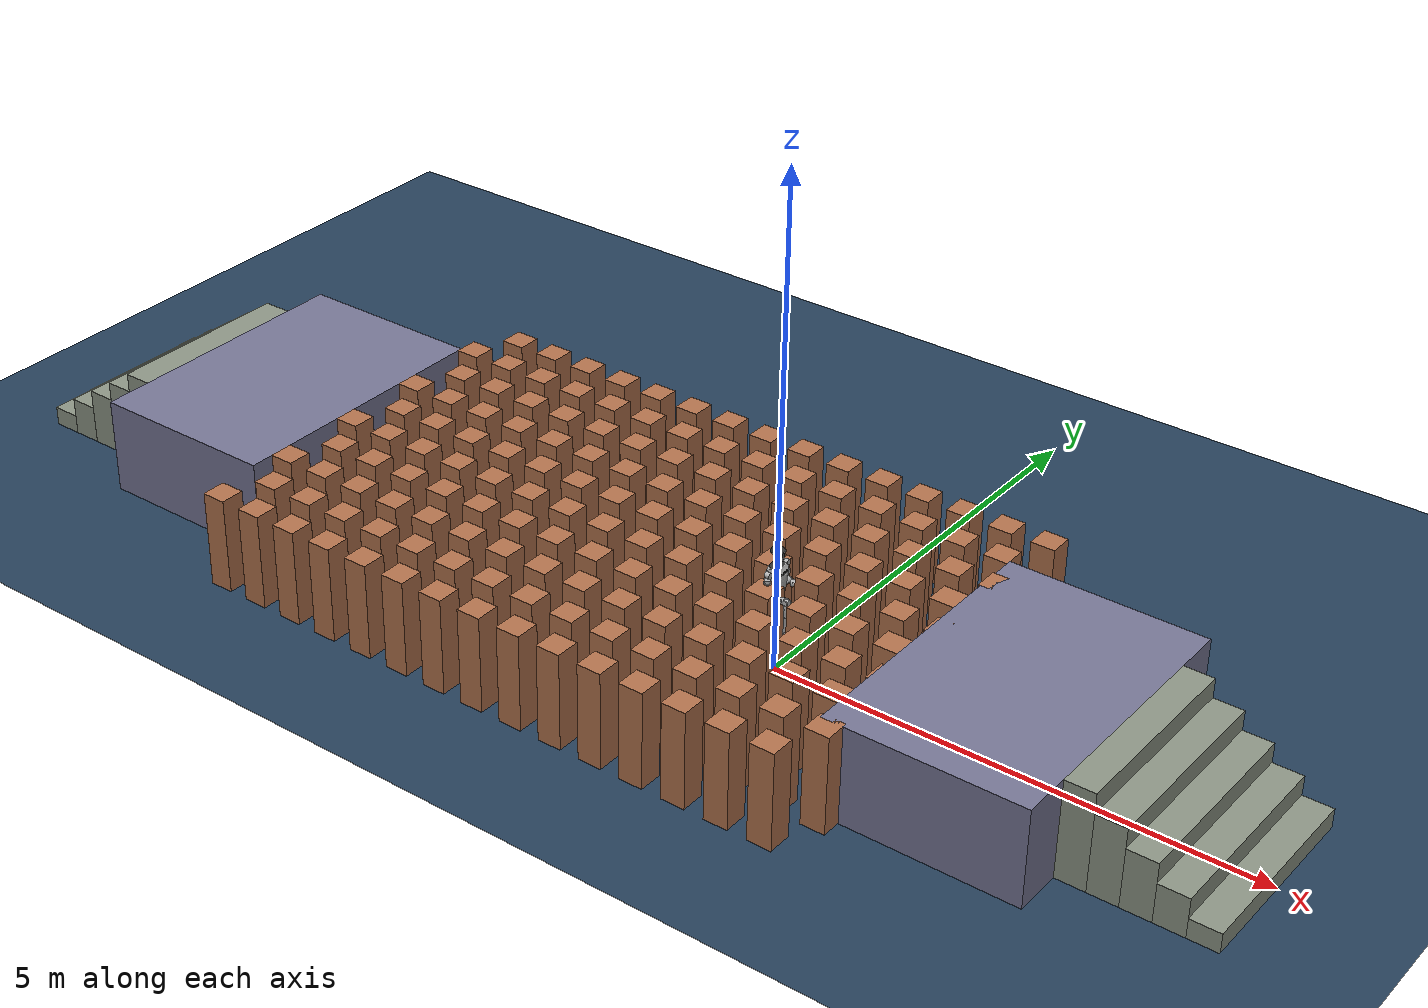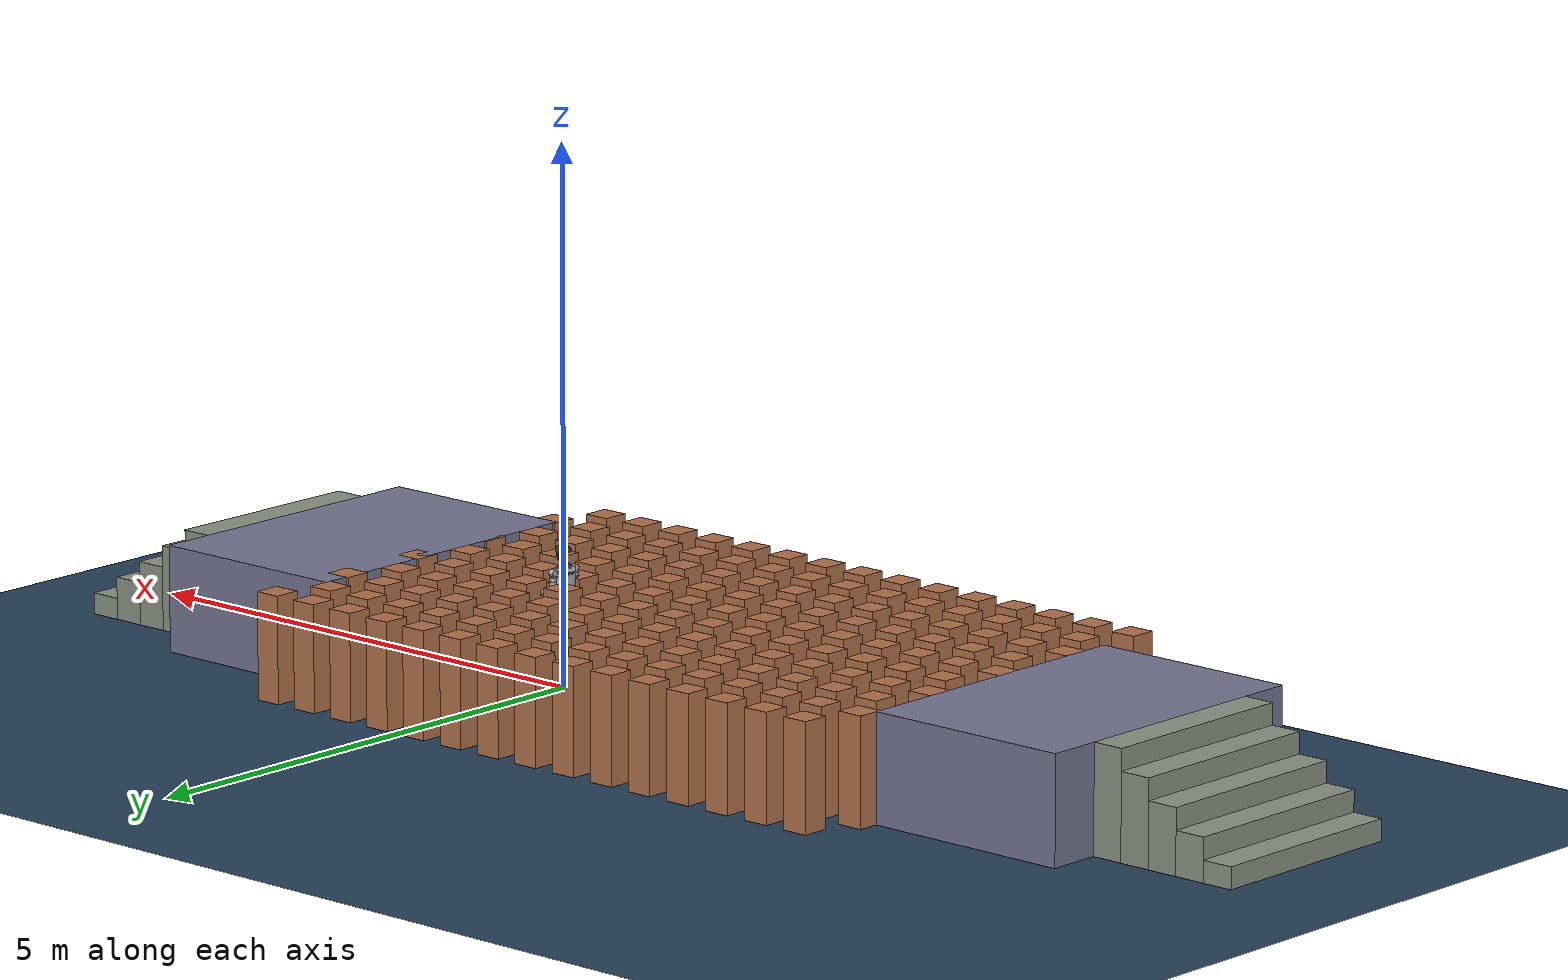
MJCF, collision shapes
<mujoco model="g1_29dof rough terrain scene">
  <include file="g1_29dof_raycaster.xml" />
  <extension>
    <plugin plugin="mujoco.sensor.ray_caster" />
  </extension>
  <statistic center="9.0 0.0 0.25" extent="20.0" />
  <visual>
    <headlight diffuse="0.6 0.6 0.6" ambient="0.3 0.3 0.3" specular="0 0 0" />
    <rgba haze="0.15 0.25 0.35 1" />
    <global azimuth="-130" elevation="-25" />
  </visual>
  <asset>
    <texture type="skybox" builtin="gradient" rgb1="0.3 0.5 0.7" rgb2="0 0 0" width="512" height="3072" />
    <texture type="2d" name="groundplane" builtin="checker" mark="edge" rgb1="0.2 0.3 0.4" rgb2="0.1 0.2 0.3" markrgb="0.8 0.8 0.8" width="300" height="300" />
    <material name="groundplane" texture="groundplane" texuniform="true" texrepeat="5 5" reflectance="0.2" />
    <material name="stair_mat" rgba="0.55 0.58 0.52 1" />
    <material name="platform_mat" rgba="0.46 0.46 0.58 1" />
    <material name="pile_mat" rgba="0.7 0.45 0.3 1" />
  </asset>
  <worldbody>
    <light pos="0 0 2.5" dir="0 0 -1" directional="true" />
    <geom name="floor" group="2" size="0 0 0.05" type="plane" material="groundplane" />
    <!-- Up stairs -->
    <geom name="up_stair_0" group="2" pos="4.85 0 0.1" type="box" size="0.15 1 0.1" material="stair_mat" />
    <geom name="up_stair_1" group="2" pos="4.55 0 0.2" type="box" size="0.15 1 0.2" material="stair_mat" />
    <geom name="up_stair_2" group="2" pos="4.25 0 0.3" type="box" size="0.15 1 0.3" material="stair_mat" />
    <geom name="up_stair_3" group="2" pos="3.95 0 0.4" type="box" size="0.15 1 0.4" material="stair_mat" />
    <geom name="up_stair_4" group="2" pos="3.65 0 0.5" type="box" size="0.15 1 0.5" material="stair_mat" />
    <!-- Platform 1: x=[1.5, 3.5]-->
    <geom name="platform_1" group="2" pos="2.5 0 0.5" type="box" size="1 1.5 0.5" material="platform_mat" />
    <!-- Plum-blossom piles: 10x15, center_x=-1.775, top z=1-->
    <geom name="pile_r0_c0" group="2" pos="-4.925 -2.025 0.5" type="box" size="0.125 0.125 0.5" material="pile_mat" />
    <geom name="pile_r0_c1" group="2" pos="-4.475 -2.025 0.5" type="box" size="0.125 0.125 0.5" material="pile_mat" />
    <geom name="pile_r0_c2" group="2" pos="-4.025 -2.025 0.5" type="box" size="0.125 0.125 0.5" material="pile_mat" />
    <geom name="pile_r0_c3" group="2" pos="-3.575 -2.025 0.5" type="box" size="0.125 0.125 0.5" material="pile_mat" />
    <geom name="pile_r0_c4" group="2" pos="-3.125 -2.025 0.5" type="box" size="0.125 0.125 0.5" material="pile_mat" />
    <geom name="pile_r0_c5" group="2" pos="-2.675 -2.025 0.5" type="box" size="0.125 0.125 0.5" material="pile_mat" />
    <geom name="pile_r0_c6" group="2" pos="-2.225 -2.025 0.5" type="box" size="0.125 0.125 0.5" material="pile_mat" />
    <geom name="pile_r0_c7" group="2" pos="-1.775 -2.025 0.5" type="box" size="0.125 0.125 0.5" material="pile_mat" />
    <geom name="pile_r0_c8" group="2" pos="-1.325 -2.025 0.5" type="box" size="0.125 0.125 0.5" material="pile_mat" />
    <geom name="pile_r0_c9" group="2" pos="-0.875 -2.025 0.5" type="box" size="0.125 0.125 0.5" material="pile_mat" />
    <geom name="pile_r0_c10" group="2" pos="-0.425 -2.025 0.5" type="box" size="0.125 0.125 0.5" material="pile_mat" />
    <geom name="pile_r0_c11" group="2" pos="0.025 -2.025 0.5" type="box" size="0.125 0.125 0.5" material="pile_mat" />
    <geom name="pile_r0_c12" group="2" pos="0.475 -2.025 0.5" type="box" size="0.125 0.125 0.5" material="pile_mat" />
    <geom name="pile_r0_c13" group="2" pos="0.925 -2.025 0.5" type="box" size="0.125 0.125 0.5" material="pile_mat" />
    <geom name="pile_r0_c14" group="2" pos="1.375 -2.025 0.5" type="box" size="0.125 0.125 0.5" material="pile_mat" />
    <geom name="pile_r1_c0" group="2" pos="-4.7 -1.575 0.5" type="box" size="0.125 0.125 0.5" material="pile_mat" />
    <geom name="pile_r1_c1" group="2" pos="-4.25 -1.575 0.5" type="box" size="0.125 0.125 0.5" material="pile_mat" />
    <geom name="pile_r1_c2" group="2" pos="-3.8 -1.575 0.5" type="box" size="0.125 0.125 0.5" material="pile_mat" />
    <geom name="pile_r1_c3" group="2" pos="-3.35 -1.575 0.5" type="box" size="0.125 0.125 0.5" material="pile_mat" />
    <geom name="pile_r1_c4" group="2" pos="-2.9 -1.575 0.5" type="box" size="0.125 0.125 0.5" material="pile_mat" />
    <geom name="pile_r1_c5" group="2" pos="-2.45 -1.575 0.5" type="box" size="0.125 0.125 0.5" material="pile_mat" />
    <geom name="pile_r1_c6" group="2" pos="-2 -1.575 0.5" type="box" size="0.125 0.125 0.5" material="pile_mat" />
    <geom name="pile_r1_c7" group="2" pos="-1.55 -1.575 0.5" type="box" size="0.125 0.125 0.5" material="pile_mat" />
    <geom name="pile_r1_c8" group="2" pos="-1.1 -1.575 0.5" type="box" size="0.125 0.125 0.5" material="pile_mat" />
    <geom name="pile_r1_c9" group="2" pos="-0.65 -1.575 0.5" type="box" size="0.125 0.125 0.5" material="pile_mat" />
    <geom name="pile_r1_c10" group="2" pos="-0.2 -1.575 0.5" type="box" size="0.125 0.125 0.5" material="pile_mat" />
    <geom name="pile_r1_c11" group="2" pos="0.25 -1.575 0.5" type="box" size="0.125 0.125 0.5" material="pile_mat" />
    <geom name="pile_r1_c12" group="2" pos="0.7 -1.575 0.5" type="box" size="0.125 0.125 0.5" material="pile_mat" />
    <geom name="pile_r1_c13" group="2" pos="1.15 -1.575 0.5" type="box" size="0.125 0.125 0.5" material="pile_mat" />
    <geom name="pile_r1_c14" group="2" pos="1.6 -1.575 0.5" type="box" size="0.125 0.125 0.5" material="pile_mat" />
    <geom name="pile_r2_c0" group="2" pos="-4.925 -1.125 0.5" type="box" size="0.125 0.125 0.5" material="pile_mat" />
    <geom name="pile_r2_c1" group="2" pos="-4.475 -1.125 0.5" type="box" size="0.125 0.125 0.5" material="pile_mat" />
    <geom name="pile_r2_c2" group="2" pos="-4.025 -1.125 0.5" type="box" size="0.125 0.125 0.5" material="pile_mat" />
    <geom name="pile_r2_c3" group="2" pos="-3.575 -1.125 0.5" type="box" size="0.125 0.125 0.5" material="pile_mat" />
    <geom name="pile_r2_c4" group="2" pos="-3.125 -1.125 0.5" type="box" size="0.125 0.125 0.5" material="pile_mat" />
    <geom name="pile_r2_c5" group="2" pos="-2.675 -1.125 0.5" type="box" size="0.125 0.125 0.5" material="pile_mat" />
    <geom name="pile_r2_c6" group="2" pos="-2.225 -1.125 0.5" type="box" size="0.125 0.125 0.5" material="pile_mat" />
    <geom name="pile_r2_c7" group="2" pos="-1.775 -1.125 0.5" type="box" size="0.125 0.125 0.5" material="pile_mat" />
    <geom name="pile_r2_c8" group="2" pos="-1.325 -1.125 0.5" type="box" size="0.125 0.125 0.5" material="pile_mat" />
    <geom name="pile_r2_c9" group="2" pos="-0.875 -1.125 0.5" type="box" size="0.125 0.125 0.5" material="pile_mat" />
    <geom name="pile_r2_c10" group="2" pos="-0.425 -1.125 0.5" type="box" size="0.125 0.125 0.5" material="pile_mat" />
    <geom name="pile_r2_c11" group="2" pos="0.025 -1.125 0.5" type="box" size="0.125 0.125 0.5" material="pile_mat" />
    <geom name="pile_r2_c12" group="2" pos="0.475 -1.125 0.5" type="box" size="0.125 0.125 0.5" material="pile_mat" />
    <geom name="pile_r2_c13" group="2" pos="0.925 -1.125 0.5" type="box" size="0.125 0.125 0.5" material="pile_mat" />
    <geom name="pile_r2_c14" group="2" pos="1.375 -1.125 0.5" type="box" size="0.125 0.125 0.5" material="pile_mat" />
    <geom name="pile_r3_c0" group="2" pos="-4.7 -0.675 0.5" type="box" size="0.125 0.125 0.5" material="pile_mat" />
    <geom name="pile_r3_c1" group="2" pos="-4.25 -0.675 0.5" type="box" size="0.125 0.125 0.5" material="pile_mat" />
    <geom name="pile_r3_c2" group="2" pos="-3.8 -0.675 0.5" type="box" size="0.125 0.125 0.5" material="pile_mat" />
    <geom name="pile_r3_c3" group="2" pos="-3.35 -0.675 0.5" type="box" size="0.125 0.125 0.5" material="pile_mat" />
    <geom name="pile_r3_c4" group="2" pos="-2.9 -0.675 0.5" type="box" size="0.125 0.125 0.5" material="pile_mat" />
    <geom name="pile_r3_c5" group="2" pos="-2.45 -0.675 0.5" type="box" size="0.125 0.125 0.5" material="pile_mat" />
    <geom name="pile_r3_c6" group="2" pos="-2 -0.675 0.5" type="box" size="0.125 0.125 0.5" material="pile_mat" />
    <geom name="pile_r3_c7" group="2" pos="-1.55 -0.675 0.5" type="box" size="0.125 0.125 0.5" material="pile_mat" />
    <geom name="pile_r3_c8" group="2" pos="-1.1 -0.675 0.5" type="box" size="0.125 0.125 0.5" material="pile_mat" />
    <geom name="pile_r3_c9" group="2" pos="-0.65 -0.675 0.5" type="box" size="0.125 0.125 0.5" material="pile_mat" />
    <geom name="pile_r3_c10" group="2" pos="-0.2 -0.675 0.5" type="box" size="0.125 0.125 0.5" material="pile_mat" />
    <geom name="pile_r3_c11" group="2" pos="0.25 -0.675 0.5" type="box" size="0.125 0.125 0.5" material="pile_mat" />
    <geom name="pile_r3_c12" group="2" pos="0.7 -0.675 0.5" type="box" size="0.125 0.125 0.5" material="pile_mat" />
    <geom name="pile_r3_c13" group="2" pos="1.15 -0.675 0.5" type="box" size="0.125 0.125 0.5" material="pile_mat" />
    <geom name="pile_r3_c14" group="2" pos="1.6 -0.675 0.5" type="box" size="0.125 0.125 0.5" material="pile_mat" />
    <geom name="pile_r4_c0" group="2" pos="-4.925 -0.225 0.5" type="box" size="0.125 0.125 0.5" material="pile_mat" />
    <geom name="pile_r4_c1" group="2" pos="-4.475 -0.225 0.5" type="box" size="0.125 0.125 0.5" material="pile_mat" />
    <geom name="pile_r4_c2" group="2" pos="-4.025 -0.225 0.5" type="box" size="0.125 0.125 0.5" material="pile_mat" />
    <geom name="pile_r4_c3" group="2" pos="-3.575 -0.225 0.5" type="box" size="0.125 0.125 0.5" material="pile_mat" />
    <geom name="pile_r4_c4" group="2" pos="-3.125 -0.225 0.5" type="box" size="0.125 0.125 0.5" material="pile_mat" />
    <geom name="pile_r4_c5" group="2" pos="-2.675 -0.225 0.5" type="box" size="0.125 0.125 0.5" material="pile_mat" />
    <geom name="pile_r4_c6" group="2" pos="-2.225 -0.225 0.5" type="box" size="0.125 0.125 0.5" material="pile_mat" />
    <geom name="pile_r4_c7" group="2" pos="-1.775 -0.225 0.5" type="box" size="0.125 0.125 0.5" material="pile_mat" />
    <geom name="pile_r4_c8" group="2" pos="-1.325 -0.225 0.5" type="box" size="0.125 0.125 0.5" material="pile_mat" />
    <geom name="pile_r4_c9" group="2" pos="-0.875 -0.225 0.5" type="box" size="0.125 0.125 0.5" material="pile_mat" />
    <geom name="pile_r4_c10" group="2" pos="-0.425 -0.225 0.5" type="box" size="0.125 0.125 0.5" material="pile_mat" />
    <geom name="pile_r4_c11" group="2" pos="0.025 -0.225 0.5" type="box" size="0.125 0.125 0.5" material="pile_mat" />
    <geom name="pile_r4_c12" group="2" pos="0.475 -0.225 0.5" type="box" size="0.125 0.125 0.5" material="pile_mat" />
    <geom name="pile_r4_c13" group="2" pos="0.925 -0.225 0.5" type="box" size="0.125 0.125 0.5" material="pile_mat" />
    <geom name="pile_r4_c14" group="2" pos="1.375 -0.225 0.5" type="box" size="0.125 0.125 0.5" material="pile_mat" />
    <geom name="pile_r5_c0" group="2" pos="-4.7 0.225 0.5" type="box" size="0.125 0.125 0.5" material="pile_mat" />
    <geom name="pile_r5_c1" group="2" pos="-4.25 0.225 0.5" type="box" size="0.125 0.125 0.5" material="pile_mat" />
    <geom name="pile_r5_c2" group="2" pos="-3.8 0.225 0.5" type="box" size="0.125 0.125 0.5" material="pile_mat" />
    <geom name="pile_r5_c3" group="2" pos="-3.35 0.225 0.5" type="box" size="0.125 0.125 0.5" material="pile_mat" />
    <geom name="pile_r5_c4" group="2" pos="-2.9 0.225 0.5" type="box" size="0.125 0.125 0.5" material="pile_mat" />
    <geom name="pile_r5_c5" group="2" pos="-2.45 0.225 0.5" type="box" size="0.125 0.125 0.5" material="pile_mat" />
    <geom name="pile_r5_c6" group="2" pos="-2 0.225 0.5" type="box" size="0.125 0.125 0.5" material="pile_mat" />
    <geom name="pile_r5_c7" group="2" pos="-1.55 0.225 0.5" type="box" size="0.125 0.125 0.5" material="pile_mat" />
    <geom name="pile_r5_c8" group="2" pos="-1.1 0.225 0.5" type="box" size="0.125 0.125 0.5" material="pile_mat" />
    <geom name="pile_r5_c9" group="2" pos="-0.65 0.225 0.5" type="box" size="0.125 0.125 0.5" material="pile_mat" />
    <geom name="pile_r5_c10" group="2" pos="-0.2 0.225 0.5" type="box" size="0.125 0.125 0.5" material="pile_mat" />
    <geom name="pile_r5_c11" group="2" pos="0.25 0.225 0.5" type="box" size="0.125 0.125 0.5" material="pile_mat" />
    <geom name="pile_r5_c12" group="2" pos="0.7 0.225 0.5" type="box" size="0.125 0.125 0.5" material="pile_mat" />
    <geom name="pile_r5_c13" group="2" pos="1.15 0.225 0.5" type="box" size="0.125 0.125 0.5" material="pile_mat" />
    <geom name="pile_r5_c14" group="2" pos="1.6 0.225 0.5" type="box" size="0.125 0.125 0.5" material="pile_mat" />
    <geom name="pile_r6_c0" group="2" pos="-4.925 0.675 0.5" type="box" size="0.125 0.125 0.5" material="pile_mat" />
    <geom name="pile_r6_c1" group="2" pos="-4.475 0.675 0.5" type="box" size="0.125 0.125 0.5" material="pile_mat" />
    <geom name="pile_r6_c2" group="2" pos="-4.025 0.675 0.5" type="box" size="0.125 0.125 0.5" material="pile_mat" />
    <geom name="pile_r6_c3" group="2" pos="-3.575 0.675 0.5" type="box" size="0.125 0.125 0.5" material="pile_mat" />
    <geom name="pile_r6_c4" group="2" pos="-3.125 0.675 0.5" type="box" size="0.125 0.125 0.5" material="pile_mat" />
    <geom name="pile_r6_c5" group="2" pos="-2.675 0.675 0.5" type="box" size="0.125 0.125 0.5" material="pile_mat" />
    <geom name="pile_r6_c6" group="2" pos="-2.225 0.675 0.5" type="box" size="0.125 0.125 0.5" material="pile_mat" />
    <geom name="pile_r6_c7" group="2" pos="-1.775 0.675 0.5" type="box" size="0.125 0.125 0.5" material="pile_mat" />
    <geom name="pile_r6_c8" group="2" pos="-1.325 0.675 0.5" type="box" size="0.125 0.125 0.5" material="pile_mat" />
    <geom name="pile_r6_c9" group="2" pos="-0.875 0.675 0.5" type="box" size="0.125 0.125 0.5" material="pile_mat" />
    <geom name="pile_r6_c10" group="2" pos="-0.425 0.675 0.5" type="box" size="0.125 0.125 0.5" material="pile_mat" />
    <geom name="pile_r6_c11" group="2" pos="0.025 0.675 0.5" type="box" size="0.125 0.125 0.5" material="pile_mat" />
    <geom name="pile_r6_c12" group="2" pos="0.475 0.675 0.5" type="box" size="0.125 0.125 0.5" material="pile_mat" />
    <geom name="pile_r6_c13" group="2" pos="0.925 0.675 0.5" type="box" size="0.125 0.125 0.5" material="pile_mat" />
    <geom name="pile_r6_c14" group="2" pos="1.375 0.675 0.5" type="box" size="0.125 0.125 0.5" material="pile_mat" />
    <geom name="pile_r7_c0" group="2" pos="-4.7 1.125 0.5" type="box" size="0.125 0.125 0.5" material="pile_mat" />
    <geom name="pile_r7_c1" group="2" pos="-4.25 1.125 0.5" type="box" size="0.125 0.125 0.5" material="pile_mat" />
    <geom name="pile_r7_c2" group="2" pos="-3.8 1.125 0.5" type="box" size="0.125 0.125 0.5" material="pile_mat" />
    <geom name="pile_r7_c3" group="2" pos="-3.35 1.125 0.5" type="box" size="0.125 0.125 0.5" material="pile_mat" />
    <geom name="pile_r7_c4" group="2" pos="-2.9 1.125 0.5" type="box" size="0.125 0.125 0.5" material="pile_mat" />
    <geom name="pile_r7_c5" group="2" pos="-2.45 1.125 0.5" type="box" size="0.125 0.125 0.5" material="pile_mat" />
    <geom name="pile_r7_c6" group="2" pos="-2 1.125 0.5" type="box" size="0.125 0.125 0.5" material="pile_mat" />
    <geom name="pile_r7_c7" group="2" pos="-1.55 1.125 0.5" type="box" size="0.125 0.125 0.5" material="pile_mat" />
    <geom name="pile_r7_c8" group="2" pos="-1.1 1.125 0.5" type="box" size="0.125 0.125 0.5" material="pile_mat" />
    <geom name="pile_r7_c9" group="2" pos="-0.65 1.125 0.5" type="box" size="0.125 0.125 0.5" material="pile_mat" />
    <geom name="pile_r7_c10" group="2" pos="-0.2 1.125 0.5" type="box" size="0.125 0.125 0.5" material="pile_mat" />
    <geom name="pile_r7_c11" group="2" pos="0.25 1.125 0.5" type="box" size="0.125 0.125 0.5" material="pile_mat" />
    <geom name="pile_r7_c12" group="2" pos="0.7 1.125 0.5" type="box" size="0.125 0.125 0.5" material="pile_mat" />
    <geom name="pile_r7_c13" group="2" pos="1.15 1.125 0.5" type="box" size="0.125 0.125 0.5" material="pile_mat" />
    <geom name="pile_r7_c14" group="2" pos="1.6 1.125 0.5" type="box" size="0.125 0.125 0.5" material="pile_mat" />
    <geom name="pile_r8_c0" group="2" pos="-4.925 1.575 0.5" type="box" size="0.125 0.125 0.5" material="pile_mat" />
    <geom name="pile_r8_c1" group="2" pos="-4.475 1.575 0.5" type="box" size="0.125 0.125 0.5" material="pile_mat" />
    <geom name="pile_r8_c2" group="2" pos="-4.025 1.575 0.5" type="box" size="0.125 0.125 0.5" material="pile_mat" />
    <geom name="pile_r8_c3" group="2" pos="-3.575 1.575 0.5" type="box" size="0.125 0.125 0.5" material="pile_mat" />
    <geom name="pile_r8_c4" group="2" pos="-3.125 1.575 0.5" type="box" size="0.125 0.125 0.5" material="pile_mat" />
    <geom name="pile_r8_c5" group="2" pos="-2.675 1.575 0.5" type="box" size="0.125 0.125 0.5" material="pile_mat" />
    <geom name="pile_r8_c6" group="2" pos="-2.225 1.575 0.5" type="box" size="0.125 0.125 0.5" material="pile_mat" />
    <geom name="pile_r8_c7" group="2" pos="-1.775 1.575 0.5" type="box" size="0.125 0.125 0.5" material="pile_mat" />
    <geom name="pile_r8_c8" group="2" pos="-1.325 1.575 0.5" type="box" size="0.125 0.125 0.5" material="pile_mat" />
    <geom name="pile_r8_c9" group="2" pos="-0.875 1.575 0.5" type="box" size="0.125 0.125 0.5" material="pile_mat" />
    <geom name="pile_r8_c10" group="2" pos="-0.425 1.575 0.5" type="box" size="0.125 0.125 0.5" material="pile_mat" />
    <geom name="pile_r8_c11" group="2" pos="0.025 1.575 0.5" type="box" size="0.125 0.125 0.5" material="pile_mat" />
    <geom name="pile_r8_c12" group="2" pos="0.475 1.575 0.5" type="box" size="0.125 0.125 0.5" material="pile_mat" />
    <geom name="pile_r8_c13" group="2" pos="0.925 1.575 0.5" type="box" size="0.125 0.125 0.5" material="pile_mat" />
    <geom name="pile_r8_c14" group="2" pos="1.375 1.575 0.5" type="box" size="0.125 0.125 0.5" material="pile_mat" />
    <geom name="pile_r9_c0" group="2" pos="-4.7 2.025 0.5" type="box" size="0.125 0.125 0.5" material="pile_mat" />
    <geom name="pile_r9_c1" group="2" pos="-4.25 2.025 0.5" type="box" size="0.125 0.125 0.5" material="pile_mat" />
    <geom name="pile_r9_c2" group="2" pos="-3.8 2.025 0.5" type="box" size="0.125 0.125 0.5" material="pile_mat" />
    <geom name="pile_r9_c3" group="2" pos="-3.35 2.025 0.5" type="box" size="0.125 0.125 0.5" material="pile_mat" />
    <geom name="pile_r9_c4" group="2" pos="-2.9 2.025 0.5" type="box" size="0.125 0.125 0.5" material="pile_mat" />
    <geom name="pile_r9_c5" group="2" pos="-2.45 2.025 0.5" type="box" size="0.125 0.125 0.5" material="pile_mat" />
    <geom name="pile_r9_c6" group="2" pos="-2 2.025 0.5" type="box" size="0.125 0.125 0.5" material="pile_mat" />
    <geom name="pile_r9_c7" group="2" pos="-1.55 2.025 0.5" type="box" size="0.125 0.125 0.5" material="pile_mat" />
    <geom name="pile_r9_c8" group="2" pos="-1.1 2.025 0.5" type="box" size="0.125 0.125 0.5" material="pile_mat" />
    <geom name="pile_r9_c9" group="2" pos="-0.65 2.025 0.5" type="box" size="0.125 0.125 0.5" material="pile_mat" />
    <geom name="pile_r9_c10" group="2" pos="-0.2 2.025 0.5" type="box" size="0.125 0.125 0.5" material="pile_mat" />
    <geom name="pile_r9_c11" group="2" pos="0.25 2.025 0.5" type="box" size="0.125 0.125 0.5" material="pile_mat" />
    <geom name="pile_r9_c12" group="2" pos="0.7 2.025 0.5" type="box" size="0.125 0.125 0.5" material="pile_mat" />
    <geom name="pile_r9_c13" group="2" pos="1.15 2.025 0.5" type="box" size="0.125 0.125 0.5" material="pile_mat" />
    <geom name="pile_r9_c14" group="2" pos="1.6 2.025 0.5" type="box" size="0.125 0.125 0.5" material="pile_mat" />
    <!-- Platform 2: x=[-7.05, -5.05]-->
    <geom name="platform_2" group="2" pos="-6.05 0 0.5" type="box" size="1 1.5 0.5" material="platform_mat" />
    <!-- Down stairs: right_edge=-7.05-->
    <geom name="down_stair_0" group="2" pos="-7.2 0 0.5" type="box" size="0.15 1 0.5" material="stair_mat" />
    <geom name="down_stair_1" group="2" pos="-7.5 0 0.4" type="box" size="0.15 1 0.4" material="stair_mat" />
    <geom name="down_stair_2" group="2" pos="-7.8 0 0.3" type="box" size="0.15 1 0.3" material="stair_mat" />
    <geom name="down_stair_3" group="2" pos="-8.1 0 0.2" type="box" size="0.15 1 0.2" material="stair_mat" />
    <geom name="down_stair_4" group="2" pos="-8.4 0 0.1" type="box" size="0.15 1 0.1" material="stair_mat" />
  </worldbody>
  <sensor>
    <plugin name="height_scanner" plugin="mujoco.sensor.ray_caster" objtype="camera" objname="height_scanner_camera">
      <config key="type" value="yaw" />
      <config key="resolution" value="0.05" />
      <config key="size" value="1.0 1.6" />
      <config key="dis_range" value="0.01 30" />
      <config key="sensor_data_types" value="pos_w" />
      <config key="n_step_update" value="10" />
      <config key="geomgroup" value="0 0 1 0 0 0" />
      <config key="detect_parentbody" value="0" />
    </plugin>
  </sensor>
</mujoco>

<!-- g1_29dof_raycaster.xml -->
<mujoco model="g1_29dof">
  <compiler angle="radian" meshdir="meshes" />

  <default>
    <default class="torso_motor">
      <joint damping="0.0" armature="0.01" frictionloss="0.0"/>
    </default>
    <default class="leg_motor">
      <joint damping="0.0" armature="0.01" frictionloss="0.0"/>
    </default>
    <default class="ankle_motor">
      <joint damping="0.0" armature="0.01" frictionloss="0.0"/>
    </default>
    <default class="arm_motor">
      <joint damping="0.0" armature="0.01" frictionloss="0.0"/>
    </default>
    <default class="wrist_motor">
      <joint damping="0.0" armature="0.01" frictionloss="0.0"/>
    </default>

  </default>

  <asset>
    <mesh name="pelvis" file="pelvis.STL" />
    <mesh name="pelvis_contour_link" file="pelvis_contour_link.STL" />
    <mesh name="left_hip_pitch_link" file="left_hip_pitch_link.STL" />
    <mesh name="left_hip_roll_link" file="left_hip_roll_link.STL" />
    <mesh name="left_hip_yaw_link" file="left_hip_yaw_link.STL" />
    <mesh name="left_knee_link" file="left_knee_link.STL" />
    <mesh name="left_ankle_pitch_link" file="left_ankle_pitch_link.STL" />
    <mesh name="left_ankle_roll_link" file="left_ankle_roll_link.STL" />
    <mesh name="right_hip_pitch_link" file="right_hip_pitch_link.STL" />
    <mesh name="right_hip_roll_link" file="right_hip_roll_link.STL" />
    <mesh name="right_hip_yaw_link" file="right_hip_yaw_link.STL" />
    <mesh name="right_knee_link" file="right_knee_link.STL" />
    <mesh name="right_ankle_pitch_link" file="right_ankle_pitch_link.STL" />
    <mesh name="right_ankle_roll_link" file="right_ankle_roll_link.STL" />
    <mesh name="waist_yaw_link" file="waist_yaw_link.STL" />
    <mesh name="waist_roll_link" file="waist_roll_link.STL" />
    <mesh name="torso_link" file="torso_link.STL" />
    <mesh name="logo_link" file="logo_link.STL" />
    <mesh name="head_link" file="head_link.STL" />
    <mesh name="waist_support_link" file="waist_support_link.STL" />
    <mesh name="left_shoulder_pitch_link" file="left_shoulder_pitch_link.STL" />
    <mesh name="left_shoulder_roll_link" file="left_shoulder_roll_link.STL" />
    <mesh name="left_shoulder_yaw_link" file="left_shoulder_yaw_link.STL" />
    <mesh name="left_elbow_link" file="left_elbow_link.STL" />
    <mesh name="left_wrist_roll_link" file="left_wrist_roll_link.STL" />
    <mesh name="left_wrist_pitch_link" file="left_wrist_pitch_link.STL" />
    <mesh name="left_wrist_yaw_link" file="left_wrist_yaw_link.STL" />
    <mesh name="left_rubber_hand" file="left_rubber_hand.STL" />
    <mesh name="right_shoulder_pitch_link" file="right_shoulder_pitch_link.STL" />
    <mesh name="right_shoulder_roll_link" file="right_shoulder_roll_link.STL" />
    <mesh name="right_shoulder_yaw_link" file="right_shoulder_yaw_link.STL" />
    <mesh name="right_elbow_link" file="right_elbow_link.STL" />
    <mesh name="right_wrist_roll_link" file="right_wrist_roll_link.STL" />
    <mesh name="right_wrist_pitch_link" file="right_wrist_pitch_link.STL" />
    <mesh name="right_wrist_yaw_link" file="right_wrist_yaw_link.STL" />
    <mesh name="right_rubber_hand" file="right_rubber_hand.STL" />
  </asset>

  <worldbody>
    <body name="pelvis" pos="0 0 0.793">
      <site name="imu" size="0.01" pos="0.0 0.0 0.0" />
      <inertial pos="0 0 -0.07605" quat="1 0 -0.000399148 0" mass="3.813"
        diaginertia="0.010549 0.0093089 0.0079184" />
      <joint name="floating_base_joint" type="free" limited="false" actuatorfrclimited="false" />
      <camera name="viewer_follow_camera" mode="track" pos="-3 0 1.2"
        xyaxes="0 -1 0 0.25 0 1" />
      <geom type="mesh" contype="0" conaffinity="0" group="1" density="0" rgba="0.2 0.2 0.2 1"
        mesh="pelvis" />
      <geom type="mesh" contype="0" conaffinity="0" group="1" density="0" rgba="0.7 0.7 0.7 1"
        mesh="pelvis_contour_link" />
      <geom type="mesh" rgba="0.7 0.7 0.7 1" mesh="pelvis_contour_link" />
      <body name="left_hip_pitch_link" pos="0 0.064452 -0.1027">
        <inertial pos="0.002741 0.047791 -0.02606" quat="0.954862 0.293964 0.0302556 0.030122"
          mass="1.35" diaginertia="0.00181517 0.00153422 0.00116212" />
        <joint name="left_hip_pitch_joint" pos="0 0 0" axis="0 1 0" range="-2.5307 2.8798"
          actuatorfrcrange="-88 88" class="leg_motor" />
        <geom type="mesh" contype="0" conaffinity="0" group="1" density="0" rgba="0.2 0.2 0.2 1"
          mesh="left_hip_pitch_link" />
        <geom type="mesh" rgba="0.2 0.2 0.2 1" mesh="left_hip_pitch_link" />
        <body name="left_hip_roll_link" pos="0 0.052 -0.030465" quat="0.996179 0 -0.0873386 0">
          <inertial pos="0.029812 -0.001045 -0.087934"
            quat="0.977808 -1.97119e-05 0.205576 -0.0403793" mass="1.52"
            diaginertia="0.00254986 0.00241169 0.00148755" />
          <joint name="left_hip_roll_joint" pos="0 0 0" axis="1 0 0" range="-0.5236 2.9671"
            actuatorfrcrange="-88 88" class="leg_motor" />
          <geom type="mesh" contype="0" conaffinity="0" group="1" density="0" rgba="0.7 0.7 0.7 1"
            mesh="left_hip_roll_link" />
          <geom type="mesh" rgba="0.7 0.7 0.7 1" mesh="left_hip_roll_link" />
          <body name="left_hip_yaw_link" pos="0.025001 0 -0.12412">
            <inertial pos="-0.057709 -0.010981 -0.15078" quat="0.600598 0.15832 0.223482 0.751181"
              mass="1.702" diaginertia="0.00776166 0.00717575 0.00160139" />
            <joint name="left_hip_yaw_joint" pos="0 0 0" axis="0 0 1" range="-2.7576 2.7576"
              actuatorfrcrange="-88 88" class="leg_motor" />
            <geom type="mesh" contype="0" conaffinity="0" group="1" density="0" rgba="0.7 0.7 0.7 1"
              mesh="left_hip_yaw_link" />
            <geom type="mesh" rgba="0.7 0.7 0.7 1" mesh="left_hip_yaw_link" />
            <body name="left_knee_link" pos="-0.078273 0.0021489 -0.17734"
              quat="0.996179 0 0.0873386 0">
              <inertial pos="0.005457 0.003964 -0.12074"
                quat="0.923418 -0.0327699 0.0158246 0.382067" mass="1.932"
                diaginertia="0.0113804 0.0112778 0.00146458" />
              <joint name="left_knee_joint" pos="0 0 0" axis="0 1 0" range="-0.087267 2.8798"
                actuatorfrcrange="-139 139" class="leg_motor" />
              <geom type="mesh" contype="0" conaffinity="0" group="1" density="0"
                rgba="0.7 0.7 0.7 1" mesh="left_knee_link" />
              <geom type="mesh" rgba="0.7 0.7 0.7 1" mesh="left_knee_link" />
              <body name="left_ankle_pitch_link" pos="0 -9.4445e-05 -0.30001">
                <inertial pos="-0.007269 0 0.011137" quat="0.603053 0.369225 0.369225 0.603053"
                  mass="0.074" diaginertia="1.89e-05 1.40805e-05 6.9195e-06" />
                <joint name="left_ankle_pitch_joint" pos="0 0 0" axis="0 1 0"
                  range="-0.87267 0.5236" actuatorfrcrange="-50 50"  class="ankle_motor"/>
                <geom type="mesh" contype="0" conaffinity="0" group="1" density="0"
                  rgba="0.7 0.7 0.7 1" mesh="left_ankle_pitch_link" />
                <geom type="mesh" rgba="0.7 0.7 0.7 1" mesh="left_ankle_pitch_link" />
                <body name="left_ankle_roll_link" pos="0 0 -0.017558">
                  <inertial pos="0.026505 0 -0.016425"
                    quat="-0.000481092 0.728482 -0.000618967 0.685065" mass="0.608"
                    diaginertia="0.00167218 0.0016161 0.000217621" />
                  <joint name="left_ankle_roll_joint" pos="0 0 0" axis="1 0 0"
                    range="-0.2618 0.2618" actuatorfrcrange="-50 50" class="ankle_motor"/>
                  <geom type="mesh" contype="0" conaffinity="0" group="1" density="0"
                    rgba="0.2 0.2 0.2 1" mesh="left_ankle_roll_link" />
                  <geom type="sphere" size="0.01" pos="-0.05 0.025 -0.03" rgba="0.2 0.2 0.2 1" />
                  <geom type="sphere" size="0.01" pos="-0.05 -0.025 -0.03" rgba="0.2 0.2 0.2 1" />
                  <geom type="sphere" size="0.01" pos="0.12 0.03 -0.03" rgba="0.2 0.2 0.2 1" />
                  <geom type="sphere" size="0.01" pos="0.12 -0.03 -0.03" rgba="0.2 0.2 0.2 1" />
                </body>
              </body>
            </body>
          </body>
        </body>
      </body>
      <body name="right_hip_pitch_link" pos="0 -0.064452 -0.1027">
        <inertial pos="0.002741 -0.047791 -0.02606" quat="0.954862 -0.293964 0.0302556 -0.030122"
          mass="1.35" diaginertia="0.00181517 0.00153422 0.00116212" />
        <joint name="right_hip_pitch_joint" pos="0 0 0" axis="0 1 0" range="-2.5307 2.8798"
          actuatorfrcrange="-88 88" class="leg_motor" />
        <geom type="mesh" contype="0" conaffinity="0" group="1" density="0" rgba="0.2 0.2 0.2 1"
          mesh="right_hip_pitch_link" />
        <geom type="mesh" rgba="0.2 0.2 0.2 1" mesh="right_hip_pitch_link" />
        <body name="right_hip_roll_link" pos="0 -0.052 -0.030465" quat="0.996179 0 -0.0873386 0">
          <inertial pos="0.029812 0.001045 -0.087934" quat="0.977808 1.97119e-05 0.205576 0.0403793"
            mass="1.52" diaginertia="0.00254986 0.00241169 0.00148755" />
          <joint name="right_hip_roll_joint" pos="0 0 0" axis="1 0 0" range="-2.9671 0.5236"
            actuatorfrcrange="-88 88" class="leg_motor" />
          <geom type="mesh" contype="0" conaffinity="0" group="1" density="0" rgba="0.7 0.7 0.7 1"
            mesh="right_hip_roll_link" />
          <geom type="mesh" rgba="0.7 0.7 0.7 1" mesh="right_hip_roll_link" />
          <body name="right_hip_yaw_link" pos="0.025001 0 -0.12412">
            <inertial pos="-0.057709 0.010981 -0.15078" quat="0.751181 0.223482 0.15832 0.600598"
              mass="1.702" diaginertia="0.00776166 0.00717575 0.00160139" />
            <joint name="right_hip_yaw_joint" pos="0 0 0" axis="0 0 1" range="-2.7576 2.7576"
              actuatorfrcrange="-88 88" class="leg_motor" />
            <geom type="mesh" contype="0" conaffinity="0" group="1" density="0" rgba="0.7 0.7 0.7 1"
              mesh="right_hip_yaw_link" />
            <geom type="mesh" rgba="0.7 0.7 0.7 1" mesh="right_hip_yaw_link" />
            <body name="right_knee_link" pos="-0.078273 -0.0021489 -0.17734"
              quat="0.996179 0 0.0873386 0">
              <inertial pos="0.005457 -0.003964 -0.12074"
                quat="0.923439 0.0345276 0.0116333 -0.382012" mass="1.932"
                diaginertia="0.011374 0.0112843 0.00146452" />
              <joint name="right_knee_joint" pos="0 0 0" axis="0 1 0" range="-0.087267 2.8798"
                actuatorfrcrange="-139 139" class="leg_motor" />
              <geom type="mesh" contype="0" conaffinity="0" group="1" density="0"
                rgba="0.7 0.7 0.7 1" mesh="right_knee_link" />
              <geom type="mesh" rgba="0.7 0.7 0.7 1" mesh="right_knee_link" />
              <body name="right_ankle_pitch_link" pos="0 9.4445e-05 -0.30001">
                <inertial pos="-0.007269 0 0.011137" quat="0.603053 0.369225 0.369225 0.603053"
                  mass="0.074" diaginertia="1.89e-05 1.40805e-05 6.9195e-06" />
                <joint name="right_ankle_pitch_joint" pos="0 0 0" axis="0 1 0"
                  range="-0.87267 0.5236" actuatorfrcrange="-50 50" class="ankle_motor" />
                <geom type="mesh" contype="0" conaffinity="0" group="1" density="0"
                  rgba="0.7 0.7 0.7 1" mesh="right_ankle_pitch_link" />
                <geom type="mesh" rgba="0.7 0.7 0.7 1" mesh="right_ankle_pitch_link" />
                <body name="right_ankle_roll_link" pos="0 0 -0.017558">
                  <inertial pos="0.026505 0 -0.016425"
                    quat="0.000481092 0.728482 0.000618967 0.685065" mass="0.608"
                    diaginertia="0.00167218 0.0016161 0.000217621" />
                  <joint name="right_ankle_roll_joint" pos="0 0 0" axis="1 0 0"
                    range="-0.2618 0.2618" actuatorfrcrange="-50 50" class="ankle_motor" />
                  <geom type="mesh" contype="0" conaffinity="0" group="1" density="0"
                    rgba="0.2 0.2 0.2 1" mesh="right_ankle_roll_link" />
                  <geom type="sphere" size="0.01" pos="-0.05 0.025 -0.03" rgba="0.2 0.2 0.2 1" />
                  <geom type="sphere" size="0.01" pos="-0.05 -0.025 -0.03" rgba="0.2 0.2 0.2 1" />
                  <geom type="sphere" size="0.01" pos="0.12 0.03 -0.03" rgba="0.2 0.2 0.2 1" />
                  <geom type="sphere" size="0.01" pos="0.12 -0.03 -0.03" rgba="0.2 0.2 0.2 1" />
                </body>
              </body>
            </body>
          </body>
        </body>
      </body>
      <body name="waist_yaw_link">
        <inertial pos="0.003964 0 0.018769" quat="-0.0178291 0.628464 0.0282471 0.777121"
          mass="0.244" diaginertia="0.000158561 0.000124229 9.67669e-05" />
        <joint name="waist_yaw_joint" pos="0 0 0" axis="0 0 1" range="-2.618 2.618"
          actuatorfrcrange="-88 88" class="torso_motor"/>
        <geom type="mesh" contype="0" conaffinity="0" group="1" density="0" rgba="0.7 0.7 0.7 1"
          mesh="waist_yaw_link" />
        <body name="waist_roll_link" pos="-0.0039635 0 0.035">
          <inertial pos="0 -0.000236 0.010111" quat="0.99979 0.020492 0 0" mass="0.047"
            diaginertia="7.515e-06 6.40206e-06 3.98394e-06" />
          <joint name="waist_roll_joint" pos="0 0 0" axis="1 0 0" range="-0.52 0.52"
            actuatorfrcrange="-50 50" class="torso_motor"/>
          <geom type="mesh" contype="0" conaffinity="0" group="1" density="0" rgba="0.7 0.7 0.7 1"
            mesh="waist_roll_link" />
          <site name="secondary_imu" size="0.01" pos="-0.03959 -0.00224 0.13792"/>
          <body name="torso_link" pos="0 0 0.019">
            <camera name="height_scanner_camera" pos="0 0 0" mode="fixed"/>
            <inertial pos="0.00331658 0.000261533 0.179856"
              quat="0.999831 0.000376204 0.0179895 -0.00377704" mass="9.598"
              diaginertia="0.12407 0.111951 0.0325382" />
            <joint name="waist_pitch_joint" pos="0 0 0" axis="0 1 0" range="-0.52 0.52"
              actuatorfrcrange="-50 50" class="torso_motor"/>
            <geom type="mesh" contype="0" conaffinity="0" group="1" density="0" rgba="0.7 0.7 0.7 1"
              mesh="torso_link" />
            <geom type="mesh" rgba="0.7 0.7 0.7 1" mesh="torso_link" />
            <geom pos="0.0039635 0 -0.054" quat="1 0 0 0" type="mesh" contype="0" conaffinity="0"
              group="1" density="0" rgba="0.2 0.2 0.2 1" mesh="logo_link" />
            <geom pos="0.0039635 0 -0.054" quat="1 0 0 0" type="mesh" rgba="0.2 0.2 0.2 1"
              mesh="logo_link" />
            <geom pos="0.0039635 0 -0.054" type="mesh" contype="0" conaffinity="0" group="1"
              density="0" rgba="0.2 0.2 0.2 1" mesh="head_link" />
            <geom pos="0.0039635 0 -0.054" type="mesh" rgba="0.2 0.2 0.2 1" mesh="head_link" />
            <geom pos="0.0039635 0 -0.054" quat="1 0 0 0" type="mesh" contype="0" conaffinity="0"
              group="1" density="0" rgba="0.7 0.7 0.7 1" mesh="waist_support_link" />
            <geom pos="0.0039635 0 -0.054" quat="1 0 0 0" type="mesh" rgba="0.7 0.7 0.7 1"
              mesh="waist_support_link" />
            <body name="left_shoulder_pitch_link" pos="0.0039563 0.10022 0.23778"
              quat="0.990264 0.139201 1.38722e-05 -9.86868e-05">
              <inertial pos="0 0.035892 -0.011628" quat="0.654152 0.0130458 -0.326267 0.68225"
                mass="0.718" diaginertia="0.000465864 0.000432842 0.000406394" />
              <joint name="left_shoulder_pitch_joint" pos="0 0 0" axis="0 1 0"
                range="-3.0892 2.6704" actuatorfrcrange="-25 25" class="arm_motor" />
              <geom type="mesh" contype="0" conaffinity="0" group="1" density="0"
                rgba="0.7 0.7 0.7 1" mesh="left_shoulder_pitch_link" />
              <geom size="0.03 0.025" pos="0 0.04 -0.01" quat="0.707107 0 0.707107 0"
                type="cylinder" rgba="0.7 0.7 0.7 1" />
              <body name="left_shoulder_roll_link" pos="0 0.038 -0.013831"
                quat="0.990268 -0.139172 0 0">
                <inertial pos="-0.000227 0.00727 -0.063243"
                  quat="0.701256 -0.0196223 -0.00710317 0.712604" mass="0.643"
                  diaginertia="0.000691311 0.000618011 0.000388977" />
                <joint name="left_shoulder_roll_joint" pos="0 0 0" axis="1 0 0"
                  range="-1.5882 2.2515" actuatorfrcrange="-25 25" class="arm_motor" />
                <geom type="mesh" contype="0" conaffinity="0" group="1" density="0"
                  rgba="0.7 0.7 0.7 1" mesh="left_shoulder_roll_link" />
                <geom size="0.03 0.015" pos="-0.004 0.006 -0.053" type="cylinder"
                  rgba="0.7 0.7 0.7 1" />
                <body name="left_shoulder_yaw_link" pos="0 0.00624 -0.1032">
                  <inertial pos="0.010773 -0.002949 -0.072009"
                    quat="0.716879 -0.0964829 -0.0679942 0.687134" mass="0.734"
                    diaginertia="0.00106187 0.00103217 0.000400661" />
                  <joint name="left_shoulder_yaw_joint" pos="0 0 0" axis="0 0 1"
                    range="-2.618 2.618" actuatorfrcrange="-25 25" class="arm_motor" />
                  <geom type="mesh" contype="0" conaffinity="0" group="1" density="0"
                    rgba="0.7 0.7 0.7 1" mesh="left_shoulder_yaw_link" />
                  <geom type="mesh" rgba="0.7 0.7 0.7 1" mesh="left_shoulder_yaw_link" />
                  <body name="left_elbow_link" pos="0.015783 0 -0.080518">
                    <inertial pos="0.064956 0.004454 -0.010062"
                      quat="0.541765 0.636132 0.388821 0.388129" mass="0.6"
                      diaginertia="0.000443035 0.000421612 0.000259353" />
                    <joint name="left_elbow_joint" pos="0 0 0" axis="0 1 0" range="-1.0472 2.0944"
                      actuatorfrcrange="-25 25" class="arm_motor" />
                    <geom type="mesh" contype="0" conaffinity="0" group="1" density="0"
                      rgba="0.7 0.7 0.7 1" mesh="left_elbow_link" />
                    <geom type="mesh" rgba="0.7 0.7 0.7 1" mesh="left_elbow_link" />
                    <body name="left_wrist_roll_link" pos="0.1 0.00188791 -0.01">
                      <inertial pos="0.0171394 0.000537591 4.8864e-07"
                        quat="0.575338 0.411667 -0.574906 0.411094" mass="0.085445"
                        diaginertia="5.48211e-05 4.96646e-05 3.57798e-05" />
                      <joint name="left_wrist_roll_joint" pos="0 0 0" axis="1 0 0"
                        range="-1.97222 1.97222" actuatorfrcrange="-25 25" class="arm_motor" />
                      <geom type="mesh" contype="0" conaffinity="0" group="1" density="0"
                        rgba="0.7 0.7 0.7 1" mesh="left_wrist_roll_link" />
                      <geom type="mesh" rgba="0.7 0.7 0.7 1" mesh="left_wrist_roll_link" />
                      <body name="left_wrist_pitch_link" pos="0.038 0 0">
                        <inertial pos="0.0229999 -0.00111685 -0.00111658"
                          quat="0.249998 0.661363 0.293036 0.643608" mass="0.48405"
                          diaginertia="0.000430353 0.000429873 0.000164648" />
                        <joint name="left_wrist_pitch_joint" pos="0 0 0" axis="0 1 0"
                          range="-1.61443 1.61443" actuatorfrcrange="-5 5" class="wrist_motor" />
                        <geom type="mesh" contype="0" conaffinity="0" group="1" density="0"
                          rgba="0.7 0.7 0.7 1" mesh="left_wrist_pitch_link" />
                        <geom type="mesh" rgba="0.7 0.7 0.7 1" mesh="left_wrist_pitch_link" />
                        <body name="left_wrist_yaw_link" pos="0.046 0 0">
                          <inertial pos="0.0708244 0.000191745 0.00161742"
                            quat="0.510571 0.526295 0.468078 0.493188" mass="0.254576"
                            diaginertia="0.000646113 0.000559993 0.000147566" />
                          <joint name="left_wrist_yaw_joint" pos="0 0 0" axis="0 0 1"
                            range="-1.61443 1.61443" actuatorfrcrange="-5 5" class="wrist_motor" />
                          <geom type="mesh" contype="0" conaffinity="0" group="1" density="0"
                            rgba="0.7 0.7 0.7 1" mesh="left_wrist_yaw_link" />
                          <geom type="mesh" rgba="0.7 0.7 0.7 1" mesh="left_wrist_yaw_link" />
                          <geom pos="0.0415 0.003 0" quat="1 0 0 0" type="mesh" contype="0"
                            conaffinity="0" group="1" density="0" rgba="0.7 0.7 0.7 1"
                            mesh="left_rubber_hand" />
                        </body>
                      </body>
                    </body>
                  </body>
                </body>
              </body>
            </body>
            <body name="right_shoulder_pitch_link" pos="0.0039563 -0.10021 0.23778"
              quat="0.990264 -0.139201 1.38722e-05 9.86868e-05">
              <inertial pos="0 -0.035892 -0.011628" quat="0.68225 -0.326267 0.0130458 0.654152"
                mass="0.718" diaginertia="0.000465864 0.000432842 0.000406394" />
              <joint name="right_shoulder_pitch_joint" pos="0 0 0" axis="0 1 0"
                range="-3.0892 2.6704" actuatorfrcrange="-25 25" class="arm_motor" />
              <geom type="mesh" contype="0" conaffinity="0" group="1" density="0"
                rgba="0.7 0.7 0.7 1" mesh="right_shoulder_pitch_link" />
              <geom size="0.03 0.025" pos="0 -0.04 -0.01" quat="0.707107 0 0.707107 0"
                type="cylinder" rgba="0.7 0.7 0.7 1" />
              <body name="right_shoulder_roll_link" pos="0 -0.038 -0.013831"
                quat="0.990268 0.139172 0 0">
                <inertial pos="-0.000227 -0.00727 -0.063243"
                  quat="0.712604 -0.00710317 -0.0196223 0.701256" mass="0.643"
                  diaginertia="0.000691311 0.000618011 0.000388977" />
                <joint name="right_shoulder_roll_joint" pos="0 0 0" axis="1 0 0"
                  range="-2.2515 1.5882" actuatorfrcrange="-25 25" class="arm_motor" />
                <geom type="mesh" contype="0" conaffinity="0" group="1" density="0"
                  rgba="0.7 0.7 0.7 1" mesh="right_shoulder_roll_link" />
                <geom size="0.03 0.015" pos="-0.004 -0.006 -0.053" type="cylinder"
                  rgba="0.7 0.7 0.7 1" />
                <body name="right_shoulder_yaw_link" pos="0 -0.00624 -0.1032">
                  <inertial pos="0.010773 0.002949 -0.072009"
                    quat="0.687134 -0.0679942 -0.0964829 0.716879" mass="0.734"
                    diaginertia="0.00106187 0.00103217 0.000400661" />
                  <joint name="right_shoulder_yaw_joint" pos="0 0 0" axis="0 0 1"
                    range="-2.618 2.618" actuatorfrcrange="-25 25" class="arm_motor" />
                  <geom type="mesh" contype="0" conaffinity="0" group="1" density="0"
                    rgba="0.7 0.7 0.7 1" mesh="right_shoulder_yaw_link" />
                  <geom type="mesh" rgba="0.7 0.7 0.7 1" mesh="right_shoulder_yaw_link" />
                  <body name="right_elbow_link" pos="0.015783 0 -0.080518">
                    <inertial pos="0.064956 -0.004454 -0.010062"
                      quat="0.388129 0.388821 0.636132 0.541765" mass="0.6"
                      diaginertia="0.000443035 0.000421612 0.000259353" />
                    <joint name="right_elbow_joint" pos="0 0 0" axis="0 1 0" range="-1.0472 2.0944"
                      actuatorfrcrange="-25 25" class="arm_motor" />
                    <geom type="mesh" contype="0" conaffinity="0" group="1" density="0"
                      rgba="0.7 0.7 0.7 1" mesh="right_elbow_link" />
                    <geom type="mesh" rgba="0.7 0.7 0.7 1" mesh="right_elbow_link" />
                    <body name="right_wrist_roll_link" pos="0.1 -0.00188791 -0.01">
                      <inertial pos="0.0171394 -0.000537591 4.8864e-07"
                        quat="0.411667 0.575338 -0.411094 0.574906" mass="0.085445"
                        diaginertia="5.48211e-05 4.96646e-05 3.57798e-05" />
                      <joint name="right_wrist_roll_joint" pos="0 0 0" axis="1 0 0"
                        range="-1.97222 1.97222" actuatorfrcrange="-25 25" class="arm_motor" />
                      <geom type="mesh" contype="0" conaffinity="0" group="1" density="0"
                        rgba="0.7 0.7 0.7 1" mesh="right_wrist_roll_link" />
                      <geom type="mesh" rgba="0.7 0.7 0.7 1" mesh="right_wrist_roll_link" />
                      <body name="right_wrist_pitch_link" pos="0.038 0 0">
                        <inertial pos="0.0229999 0.00111685 -0.00111658"
                          quat="0.643608 0.293036 0.661363 0.249998" mass="0.48405"
                          diaginertia="0.000430353 0.000429873 0.000164648" />
                        <joint name="right_wrist_pitch_joint" pos="0 0 0" axis="0 1 0"
                          range="-1.61443 1.61443" actuatorfrcrange="-5 5" class="wrist_motor" />
                        <geom type="mesh" contype="0" conaffinity="0" group="1" density="0"
                          rgba="0.7 0.7 0.7 1" mesh="right_wrist_pitch_link" />
                        <geom type="mesh" rgba="0.7 0.7 0.7 1" mesh="right_wrist_pitch_link" />
                        <body name="right_wrist_yaw_link" pos="0.046 0 0">
                          <inertial pos="0.0708244 -0.000191745 0.00161742"
                            quat="0.493188 0.468078 0.526295 0.510571" mass="0.254576"
                            diaginertia="0.000646113 0.000559993 0.000147566" />
                          <joint name="right_wrist_yaw_joint" pos="0 0 0" axis="0 0 1"
                            range="-1.61443 1.61443" actuatorfrcrange="-5 5" class="wrist_motor" />
                          <geom type="mesh" contype="0" conaffinity="0" group="1" density="0"
                            rgba="0.7 0.7 0.7 1" mesh="right_wrist_yaw_link" />
                          <geom type="mesh" rgba="0.7 0.7 0.7 1" mesh="right_wrist_yaw_link" />
                          <geom pos="0.0415 -0.003 0" quat="1 0 0 0" type="mesh" contype="0"
                            conaffinity="0" group="1" density="0" rgba="0.7 0.7 0.7 1"
                            mesh="right_rubber_hand" />
                        </body>
                      </body>
                    </body>
                  </body>
                </body>
              </body>
            </body>
          </body>
        </body>
      </body>
    </body>
  </worldbody>

  <actuator>
    <motor name="left_hip_pitch" joint="left_hip_pitch_joint" ctrlrange="-88 88" />
    <motor name="left_hip_roll" joint="left_hip_roll_joint" ctrlrange="-88 88" />
    <motor name="left_hip_yaw" joint="left_hip_yaw_joint" ctrlrange="-88 88" />
    <motor name="left_knee" joint="left_knee_joint" ctrlrange="-139 139" />
    <motor name="left_ankle_pitch" joint="left_ankle_pitch_joint" ctrlrange="-50 50" />
    <motor name="left_ankle_roll" joint="left_ankle_roll_joint" ctrlrange="-50 50" />

    <motor name="right_hip_pitch" joint="right_hip_pitch_joint" ctrlrange="-88 88" />
    <motor name="right_hip_roll" joint="right_hip_roll_joint" ctrlrange="-88 88" />
    <motor name="right_hip_yaw" joint="right_hip_yaw_joint" ctrlrange="-88 88" />
    <motor name="right_knee" joint="right_knee_joint" ctrlrange="-139 139" />
    <motor name="right_ankle_pitch" joint="right_ankle_pitch_joint" ctrlrange="-50 50" />
    <motor name="right_ankle_roll" joint="right_ankle_roll_joint" ctrlrange="-50 50" />

    <motor name="waist_yaw" joint="waist_yaw_joint" ctrlrange="-88 88" />
    <motor name="waist_roll" joint="waist_roll_joint" ctrlrange="-50 50" />
    <motor name="waist_pitch" joint="waist_pitch_joint" ctrlrange="-50 50" />

    <motor name="left_shoulder_pitch" joint="left_shoulder_pitch_joint" ctrlrange="-25 25" />
    <motor name="left_shoulder_roll" joint="left_shoulder_roll_joint" ctrlrange="-25 25" />
    <motor name="left_shoulder_yaw" joint="left_shoulder_yaw_joint" ctrlrange="-25 25" />
    <motor name="left_elbow" joint="left_elbow_joint" ctrlrange="-25 25" />
    <motor name="left_wrist_roll" joint="left_wrist_roll_joint" ctrlrange="-25 25" />
    <motor name="left_wrist_pitch" joint="left_wrist_pitch_joint" ctrlrange="-5 5" />
    <motor name="left_wrist_yaw" joint="left_wrist_yaw_joint" ctrlrange="-5 5" />

    <motor name="right_shoulder_pitch" joint="right_shoulder_pitch_joint" ctrlrange="-25 25" />
    <motor name="right_shoulder_roll" joint="right_shoulder_roll_joint" ctrlrange="-25 25" />
    <motor name="right_shoulder_yaw" joint="right_shoulder_yaw_joint" ctrlrange="-25 25" />
    <motor name="right_elbow" joint="right_elbow_joint" ctrlrange="-25 25" />
    <motor name="right_wrist_roll" joint="right_wrist_roll_joint" ctrlrange="-25 25" />
    <motor name="right_wrist_pitch" joint="right_wrist_pitch_joint" ctrlrange="-5 5" />
    <motor name="right_wrist_yaw" joint="right_wrist_yaw_joint" ctrlrange="-5 5" />
  </actuator>

  <sensor>
    <jointpos name="left_hip_pitch_pos" joint="left_hip_pitch_joint" />
    <jointpos name="left_hip_roll_pos" joint="left_hip_roll_joint" />
    <jointpos name="left_hip_yaw_pos" joint="left_hip_yaw_joint" />
    <jointpos name="left_knee_pos" joint="left_knee_joint" />
    <jointpos name="left_ankle_pitch_pos" joint="left_ankle_pitch_joint" />
    <jointpos name="left_ankle_roll_pos" joint="left_ankle_roll_joint" />
    <jointpos name="right_hip_pitch_pos" joint="right_hip_pitch_joint" />
    <jointpos name="right_hip_roll_pos" joint="right_hip_roll_joint" />
    <jointpos name="right_hip_yaw_pos" joint="right_hip_yaw_joint" />
    <jointpos name="right_knee_pos" joint="right_knee_joint" />
    <jointpos name="right_ankle_pitch_pos" joint="right_ankle_pitch_joint" />
    <jointpos name="right_ankle_roll_pos" joint="right_ankle_roll_joint" />
    <jointpos name="waist_yaw_pos" joint="waist_yaw_joint" />
    <jointpos name="waist_roll_pos" joint="waist_roll_joint" />
    <jointpos name="waist_pitch_pos" joint="waist_pitch_joint" />
    <jointpos name="left_shoulder_pitch_pos" joint="left_shoulder_pitch_joint" />
    <jointpos name="left_shoulder_roll_pos" joint="left_shoulder_roll_joint" />
    <jointpos name="left_shoulder_yaw_pos" joint="left_shoulder_yaw_joint" />
    <jointpos name="left_elbow_pos" joint="left_elbow_joint" />
    <jointpos name="left_wrist_roll_pos" joint="left_wrist_roll_joint" />
    <jointpos name="left_wrist_pitch_pos" joint="left_wrist_pitch_joint" />
    <jointpos name="left_wrist_yaw_pos" joint="left_wrist_yaw_joint" />
    <jointpos name="right_shoulder_pitch_pos" joint="right_shoulder_pitch_joint" />
    <jointpos name="right_shoulder_roll_pos" joint="right_shoulder_roll_joint" />
    <jointpos name="right_shoulder_yaw_pos" joint="right_shoulder_yaw_joint" />
    <jointpos name="right_elbow_pos" joint="right_elbow_joint" />
    <jointpos name="right_wrist_roll_pos" joint="right_wrist_roll_joint" />
    <jointpos name="right_wrist_pitch_pos" joint="right_wrist_pitch_joint" />
    <jointpos name="right_wrist_yaw_pos" joint="right_wrist_yaw_joint" />

    <jointvel name="left_hip_pitch_vel" joint="left_hip_pitch_joint" />
    <jointvel name="left_hip_roll_vel" joint="left_hip_roll_joint" />
    <jointvel name="left_hip_yaw_vel" joint="left_hip_yaw_joint" />
    <jointvel name="left_knee_vel" joint="left_knee_joint" />
    <jointvel name="left_ankle_pitch_vel" joint="left_ankle_pitch_joint" />
    <jointvel name="left_ankle_roll_vel" joint="left_ankle_roll_joint" />
    <jointvel name="right_hip_pitch_vel" joint="right_hip_pitch_joint" />
    <jointvel name="right_hip_roll_vel" joint="right_hip_roll_joint" />
    <jointvel name="right_hip_yaw_vel" joint="right_hip_yaw_joint" />
    <jointvel name="right_knee_vel" joint="right_knee_joint" />
    <jointvel name="right_ankle_pitch_vel" joint="right_ankle_pitch_joint" />
    <jointvel name="right_ankle_roll_vel" joint="right_ankle_roll_joint" />
    <jointvel name="waist_yaw_vel" joint="waist_yaw_joint" />
    <jointvel name="waist_roll_vel" joint="waist_roll_joint" />
    <jointvel name="waist_pitch_vel" joint="waist_pitch_joint" />
    <jointvel name="left_shoulder_pitch_vel" joint="left_shoulder_pitch_joint" />
    <jointvel name="left_shoulder_roll_vel" joint="left_shoulder_roll_joint" />
    <jointvel name="left_shoulder_yaw_vel" joint="left_shoulder_yaw_joint" />
    <jointvel name="left_elbow_vel" joint="left_elbow_joint" />
    <jointvel name="left_wrist_roll_vel" joint="left_wrist_roll_joint" />
    <jointvel name="left_wrist_pitch_vel" joint="left_wrist_pitch_joint" />
    <jointvel name="left_wrist_yaw_vel" joint="left_wrist_yaw_joint" />
    <jointvel name="right_shoulder_pitch_vel" joint="right_shoulder_pitch_joint" />
    <jointvel name="right_shoulder_roll_vel" joint="right_shoulder_roll_joint" />
    <jointvel name="right_shoulder_yaw_vel" joint="right_shoulder_yaw_joint" />
    <jointvel name="right_elbow_vel" joint="right_elbow_joint" />
    <jointvel name="right_wrist_roll_vel" joint="right_wrist_roll_joint" />
    <jointvel name="right_wrist_pitch_vel" joint="right_wrist_pitch_joint" />
    <jointvel name="right_wrist_yaw_vel" joint="right_wrist_yaw_joint" />

    <jointactuatorfrc name="left_hip_pitch_torque" joint="left_hip_pitch_joint" />
    <jointactuatorfrc name="left_hip_roll_torque" joint="left_hip_roll_joint" />
    <jointactuatorfrc name="left_hip_yaw_torque" joint="left_hip_yaw_joint" />
    <jointactuatorfrc name="left_knee_torque" joint="left_knee_joint" />
    <jointactuatorfrc name="left_ankle_pitch_torque" joint="left_ankle_pitch_joint" />
    <jointactuatorfrc name="left_ankle_roll_torque" joint="left_ankle_roll_joint" />
    <jointactuatorfrc name="right_hip_pitch_torque" joint="right_hip_pitch_joint" />
    <jointactuatorfrc name="right_hip_roll_torque" joint="right_hip_roll_joint" />
    <jointactuatorfrc name="right_hip_yaw_torque" joint="right_hip_yaw_joint" />
    <jointactuatorfrc name="right_knee_torque" joint="right_knee_joint" />
    <jointactuatorfrc name="right_ankle_pitch_torque" joint="right_ankle_pitch_joint" />
    <jointactuatorfrc name="right_ankle_roll_torque" joint="right_ankle_roll_joint" />
    <jointactuatorfrc name="waist_yaw_torque" joint="waist_yaw_joint" />
    <jointactuatorfrc name="waist_roll_torque" joint="waist_roll_joint" />
    <jointactuatorfrc name="waist_pitch_torque" joint="waist_pitch_joint" />
    <jointactuatorfrc name="left_shoulder_pitch_torque" joint="left_shoulder_pitch_joint" />
    <jointactuatorfrc name="left_shoulder_roll_torque" joint="left_shoulder_roll_joint" />
    <jointactuatorfrc name="left_shoulder_yaw_torque" joint="left_shoulder_yaw_joint" />
    <jointactuatorfrc name="left_elbow_torque" joint="left_elbow_joint" />
    <jointactuatorfrc name="left_wrist_roll_torque" joint="left_wrist_roll_joint" />
    <jointactuatorfrc name="left_wrist_pitch_torque" joint="left_wrist_pitch_joint" />
    <jointactuatorfrc name="left_wrist_yaw_torque" joint="left_wrist_yaw_joint" />
    <jointactuatorfrc name="right_shoulder_pitch_torque" joint="right_shoulder_pitch_joint" />
    <jointactuatorfrc name="right_shoulder_roll_torque" joint="right_shoulder_roll_joint" />
    <jointactuatorfrc name="right_shoulder_yaw_torque" joint="right_shoulder_yaw_joint" />
    <jointactuatorfrc name="right_elbow_torque" joint="right_elbow_joint" />
    <jointactuatorfrc name="right_wrist_roll_torque" joint="right_wrist_roll_joint" />
    <jointactuatorfrc name="right_wrist_pitch_torque" joint="right_wrist_pitch_joint" />
    <jointactuatorfrc name="right_wrist_yaw_torque" joint="right_wrist_yaw_joint" />

    <framequat name="imu_quat" objtype="site" objname="imu" />
    <gyro name="imu_gyro" site="imu" />
    <accelerometer name="imu_acc" site="imu" />

    <framepos name="frame_pos" objtype="site" objname="imu" />
    <framelinvel name="frame_vel" objtype="site" objname="imu" />

    <framequat name="secondary_imu_quat" objtype="site" objname="secondary_imu" />
    <gyro name="secondary_imu_gyro" site="secondary_imu" noise="5e-4" cutoff="34.9"/>
    <accelerometer name="secondary_imu_acc" site="secondary_imu" noise="1e-2" cutoff="157"/>
  </sensor>

</mujoco>
